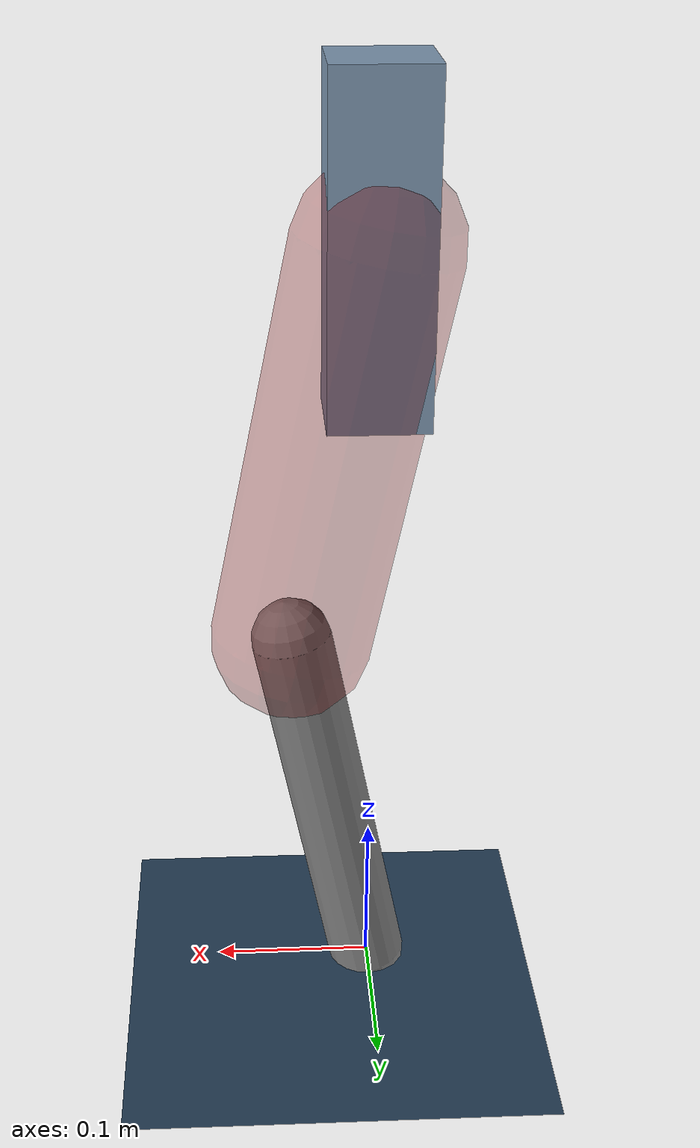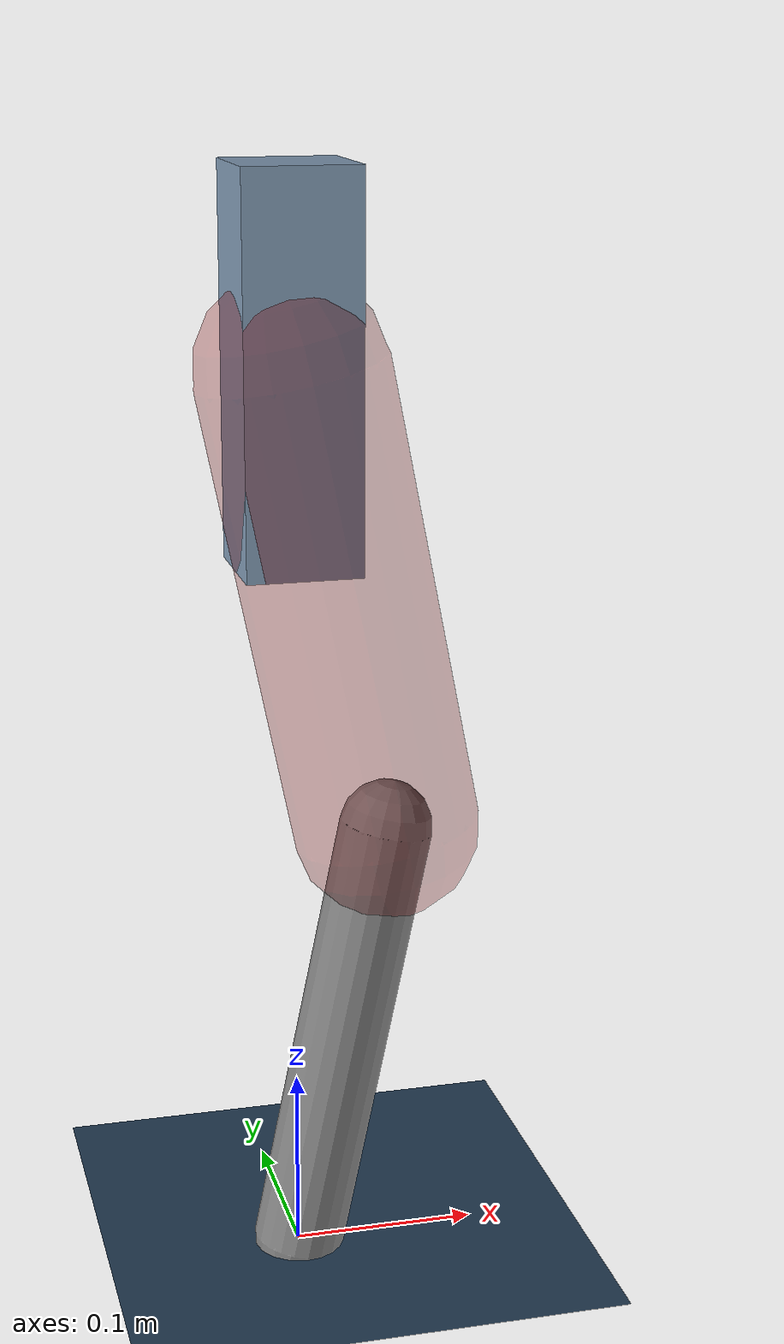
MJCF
<mujoco model="Hopper2D">
	<compiler inertiafromgeom="true" angle="radian" />
	<option timestep="0.001" integrator="implicit" cone="elliptic" solver="Newton" tolerance="1e-10" />

	<default>
		<geom contype="1" conaffinity="1" condim="3" friction="2 0.005 0.0001" solref="0.005 1" />
		<joint limited="true" damping="0.1" />
	</default>

	<asset>
		<texture name="skybox" type="skybox" builtin="gradient" rgb1=".4 .6 .8" rgb2="0 0 0" width="800" height="800" />
		<texture name="grid" type="2d" builtin="checker" rgb1=".1 .2 .3" rgb2=".2 .3 .4" width="300" height="300" mark="edge" markrgb=".2 .3 .4" />
		<material name="ground" texture="grid" texrepeat="1 1" texuniform="true" reflectance="0.1" />
		<material name="leg" rgba="0.5 0.6 0.7 1" />
	</asset>

	<worldbody>

		<geom name="floor" type="plane" size="5 5 0.25" material="ground" />

		<light directional="false" diffuse="0.8 0.8 0.8" specular="0.3 0.3 0.3" pos="0 0 2" dir="0 0 -1" />
		<light mode="targetbodycom" target="base" directional="false" diffuse="0.8 0.8 0.8" specular="0.3 0.3 0.3" pos="0 0 2" dir="0 0 -1" />

		<camera name="fixed" pos="0 -2 1" xyaxes="1 0 0 0 0 1" />
		<camera name="tracking" mode="trackcom" pos="0 -3 1" />

		<body name="root" pos="0 0 0.4885758470412502">
			<joint name="slide_x" type="slide" axis="1 0 0" range="-100 100" />
			<joint name="slide_z" type="slide" axis="0 0 1" range="0 10" />

			<body name="base" pos="0 0 0">
				<geom name="torso" type="box" size="0.03 0.03 0.1" mass="3.079" material="leg" />

				<body name="link1" pos="0 0 0" euler="0 1.3703245122335215 0">
					<joint type="hinge" axis="0 -1 0" pos="0 0 0" name="hinge1" limited="true" range="-3.14 3.14" stiffness="0" damping="0.1" />
					<geom name="thigh" type="capsule" fromto="0 0 0 0.24947175805332178 0 0" size="0.05" rgba="0.5 0 0 0.3" mass="0.8550265709386367" />

					<body name="link2" pos="0.24947175805332178 0 0" euler="0 0.4012435563721736 0">
						<joint type="hinge" axis="0 -1 0" pos="0 0 0" name="hinge2" limited="true" range="-3.14 3.14" stiffness="0" damping="0.1" />
						<geom name="shank" type="capsule" fromto="0 0 0 0.2491040889879284 0 0" size="0.025" mass="0.4417832711903427" />

					</body>
				</body>
			</body>
		</body>
	</worldbody>

	<actuator>
		<motor name="torque1" joint="hinge1" ctrlrange="-133.24903466567372 133.24903466567372" ctrllimited="true" gear="1" />
		<motor name="torque2" joint="hinge2" ctrlrange="-103.63950081971137 103.63950081971137" ctrllimited="true" gear="1" />
	</actuator>
</mujoco>
